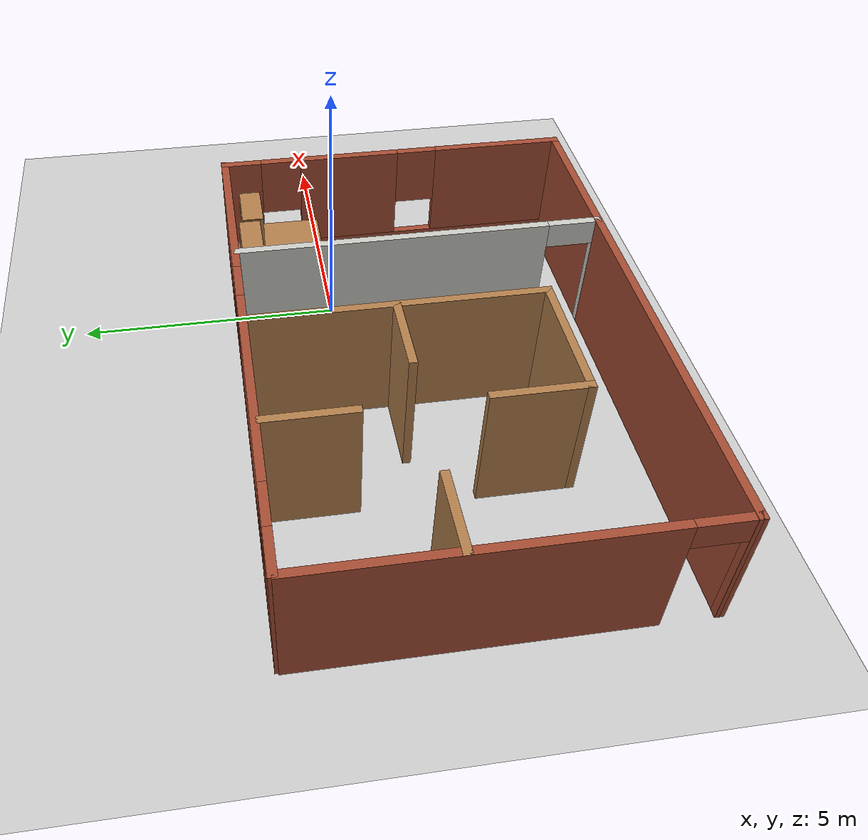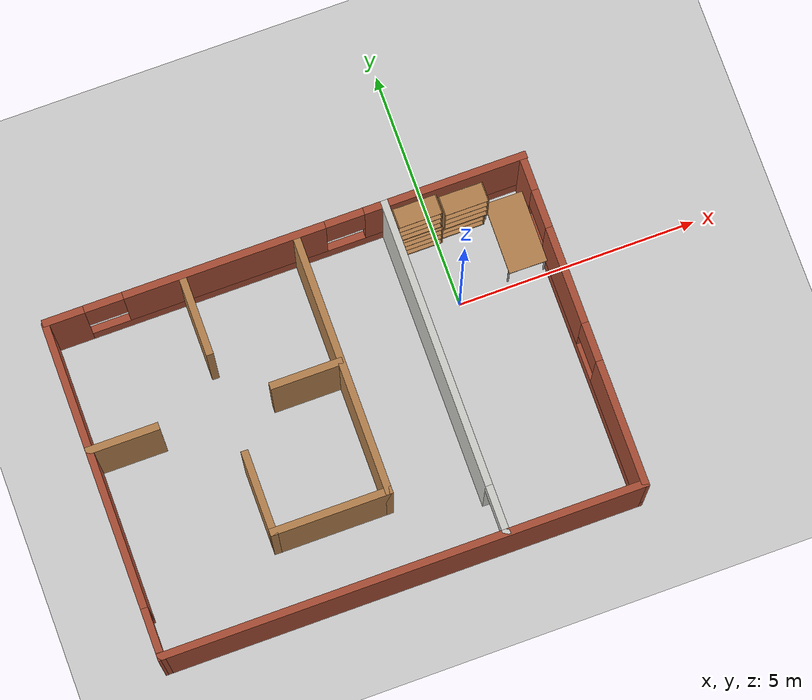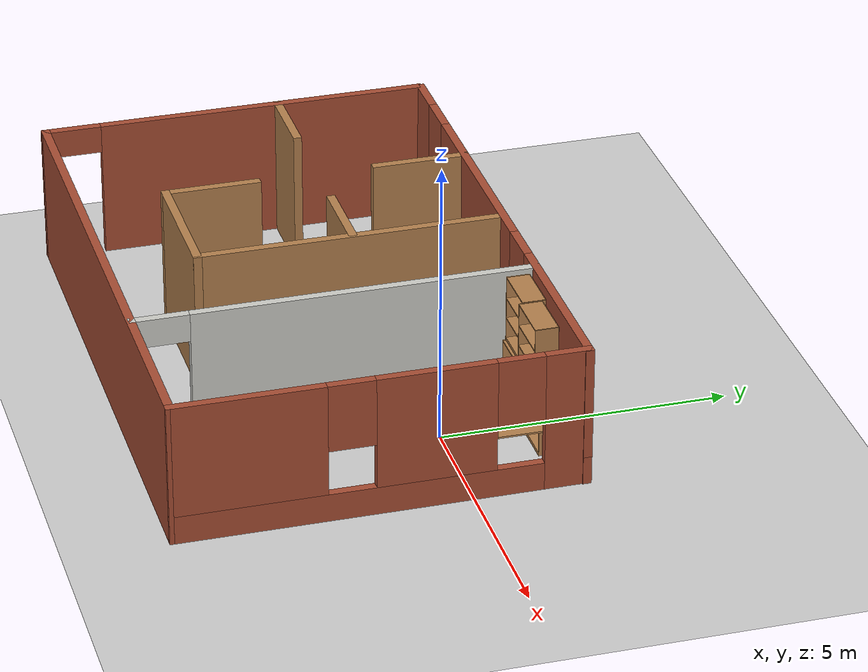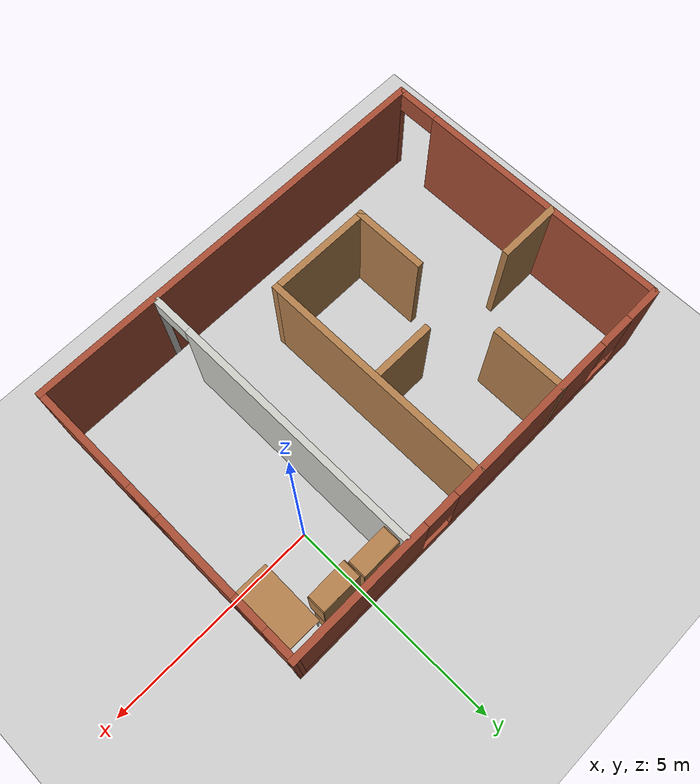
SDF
<sdf version="1.7">
 <world name="default">
  <light name="sun" type="directional">
   <pose>0 0 10 0 -0 0</pose>
   <diffuse>0.8 0.8 0.8 1</diffuse>
   <specular>0.2 0.2 0.2 1</specular>
   <attenuation>
    <range>1000</range>
    <constant>0.9</constant>
    <linear>0.01</linear>
    <quadratic>0.001</quadratic>
   </attenuation>
   <direction>-0.5 0.1 -0.9</direction>
   <spot><inner_angle>0</inner_angle><outer_angle>0</outer_angle><falloff>0</falloff></spot>
  </light>
  <model name="ground_plane">
   <static>1</static>
   <link name="link">
    <collision name="collision">
     <geometry><plane><normal>0 0 1</normal><size>100 100</size></plane></geometry>
     <surface><friction><ode><mu>100</mu><mu2>50</mu2></ode></friction></surface>
    </collision>
    <visual name="visual">
     <cast_shadows>0</cast_shadows>
     <geometry><plane><normal>0 0 1</normal><size>100 100</size></plane></geometry>
     <material>
      <script><uri>file://media/materials/scripts/gazebo.material</uri><name>Gazebo/Grey</name></script>
     </material>
    </visual>
   </link>
  </model>
  <gravity>0 0 -9.8</gravity>
  <magnetic_field>6e-06 2.3e-05 -4.2e-05</magnetic_field>
  <atmosphere type="adiabatic"/>
  <physics type="ode">
   <max_step_size>0.001</max_step_size>
   <real_time_factor>1</real_time_factor>
   <real_time_update_rate>1000</real_time_update_rate>
  </physics>
  <scene><ambient>0.4 0.4 0.4 1</ambient><background>0.7 0.7 0.7 1</background><shadows>1</shadows></scene>
  <audio><device>default</device></audio>
  <spherical_coordinates>
   <surface_model>EARTH_WGS84</surface_model>
   <latitude_deg>0</latitude_deg>
   <longitude_deg>0</longitude_deg>
   <elevation>0</elevation>
   <heading_deg>0</heading_deg>
  </spherical_coordinates>
  <model name="resta_model1">
   <pose>-2.98569 -0.691081 0 0 -0 0</pose>
   <link name="Wall_0">
    <pose>0.014858 2.59796 0 0 -0 0</pose>
    <visual name="Wall_0_Visual_0">
     <pose>-4.57664 0 1.25 0 -0 0</pose>
     <geometry><box><size>0.846716 0.15 2.5</size></box></geometry>
     <material>
      <script><uri>file://media/materials/scripts/gazebo.material</uri><name>Gazebo/Bricks</name></script>
      <ambient>1 1 1 1</ambient>
     </material>
     <meta><layer>0</layer></meta>
    </visual>
    <collision name="Wall_0_Collision_0">
     <geometry><box><size>0.846716 0.15 2.5</size></box></geometry>
     <pose>-4.57664 0 1.25 0 -0 0</pose>
    </collision>
    <visual name="Wall_0_Visual_1">
     <pose>0.423358 0 0.25 0 -0 0</pose>
     <geometry><box><size>9.15328 0.15 0.5</size></box></geometry>
     <material>
      <script><uri>file://media/materials/scripts/gazebo.material</uri><name>Gazebo/Bricks</name></script>
      <ambient>1 1 1 1</ambient>
     </material>
     <meta><layer>0</layer></meta>
    </visual>
    <collision name="Wall_0_Collision_1">
     <geometry><box><size>9.15328 0.15 0.5</size></box></geometry>
     <pose>0.423358 0 0.25 0 -0 0</pose>
    </collision>
    <visual name="Wall_0_Visual_2">
     <pose>-1.2691 0 1.5 0 -0 0</pose>
     <geometry><box><size>4.16838 0.15 2</size></box></geometry>
     <material>
      <script><uri>file://media/materials/scripts/gazebo.material</uri><name>Gazebo/Bricks</name></script>
      <ambient>1 1 1 1</ambient>
     </material>
     <meta><layer>0</layer></meta>
    </visual>
    <collision name="Wall_0_Collision_2">
     <geometry><box><size>4.16838 0.15 2</size></box></geometry>
     <pose>-1.2691 0 1.5 0 -0 0</pose>
    </collision>
    <visual name="Wall_0_Visual_3">
     <pose>3.30755 0 1.5 0 -0 0</pose>
     <geometry><box><size>3.38491 0.15 2</size></box></geometry>
     <material>
      <script><uri>file://media/materials/scripts/gazebo.material</uri><name>Gazebo/Bricks</name></script>
      <ambient>1 1 1 1</ambient>
     </material>
     <meta><layer>0</layer></meta>
    </visual>
    <collision name="Wall_0_Collision_3">
     <geometry><box><size>3.38491 0.15 2</size></box></geometry>
     <pose>3.30755 0 1.5 0 -0 0</pose>
    </collision>
    <visual name="Wall_0_Visual_4">
     <pose>-3.75328 0 1.9 0 -0 0</pose>
     <geometry><box><size>0.8 0.15 1.2</size></box></geometry>
     <material>
      <script><uri>file://media/materials/scripts/gazebo.material</uri><name>Gazebo/Bricks</name></script>
      <ambient>1 1 1 1</ambient>
     </material>
     <meta><layer>0</layer></meta>
    </visual>
    <collision name="Wall_0_Collision_4">
     <geometry><box><size>0.8 0.15 1.2</size></box></geometry>
     <pose>-3.75328 0 1.9 0 -0 0</pose>
    </collision>
    <visual name="Wall_0_Visual_5">
     <pose>1.21509 0 1.9 0 -0 0</pose>
     <geometry><box><size>0.8 0.15 1.2</size></box></geometry>
     <material>
      <script><uri>file://media/materials/scripts/gazebo.material</uri><name>Gazebo/Bricks</name></script>
      <ambient>1 1 1 1</ambient>
     </material>
     <meta><layer>0</layer></meta>
    </visual>
    <collision name="Wall_0_Collision_5">
     <geometry><box><size>0.8 0.15 1.2</size></box></geometry>
     <pose>1.21509 0 1.9 0 -0 0</pose>
    </collision>
   </link>
   <link name="Wall_15">
    <pose>2.07217 -0.827043 0 0 -0 -1.5708</pose>
    <visual name="Wall_15_Visual_0">
     <pose>-0.50831 0 1.25 0 -0 0</pose>
     <geometry><box><size>5.98338 0.15 2.5</size></box></geometry>
     <material>
      <script><uri>file://media/materials/scripts/gazebo.material</uri><name>Gazebo/CeilingTiled</name></script>
      <ambient>1 1 1 1</ambient>
     </material>
     <meta><layer>0</layer></meta>
    </visual>
    <collision name="Wall_15_Collision_0">
     <geometry><box><size>5.98338 0.15 2.5</size></box></geometry>
     <pose>-0.50831 0 1.25 0 -0 0</pose>
    </collision>
    <visual name="Wall_15_Visual_1">
     <pose>3.44169 0 1.25 0 -0 0</pose>
     <geometry><box><size>0.116619 0.15 2.5</size></box></geometry>
     <material>
      <script><uri>file://media/materials/scripts/gazebo.material</uri><name>Gazebo/CeilingTiled</name></script>
      <ambient>1 1 1 1</ambient>
     </material>
     <meta><layer>0</layer></meta>
    </visual>
    <collision name="Wall_15_Collision_1">
     <geometry><box><size>0.116619 0.15 2.5</size></box></geometry>
     <pose>3.44169 0 1.25 0 -0 0</pose>
    </collision>
    <visual name="Wall_15_Visual_2">
     <pose>2.93338 0 2.25 0 -0 0</pose>
     <geometry><box><size>0.9 0.15 0.5</size></box></geometry>
     <material>
      <script><uri>file://media/materials/scripts/gazebo.material</uri><name>Gazebo/CeilingTiled</name></script>
      <ambient>1 1 1 1</ambient>
     </material>
     <meta><layer>0</layer></meta>
    </visual>
    <collision name="Wall_15_Collision_2">
     <geometry><box><size>0.9 0.15 0.5</size></box></geometry>
     <pose>2.93338 0 2.25 0 -0 0</pose>
    </collision>
   </link>
   <link name="Wall_18">
    <collision name="Wall_18_Collision">
     <geometry><box><size>5.5 0.15 2.5</size></box></geometry>
     <pose>0 0 1.25 0 -0 0</pose>
    </collision>
    <visual name="Wall_18_Visual">
     <pose>0 0 1.25 0 -0 0</pose>
     <geometry><box><size>5.5 0.15 2.5</size></box></geometry>
     <material>
      <script><uri>file://media/materials/scripts/gazebo.material</uri><name>Gazebo/Wood</name></script>
      <ambient>1 1 1 1</ambient>
     </material>
     <meta><layer>0</layer></meta>
    </visual>
    <pose>0.222168 -0.077043 0 0 -0 -1.5708</pose>
   </link>
   <link name="Wall_2">
    <pose>4.91618 -0.844732 0 0 -0 -1.57254</pose>
    <visual name="Wall_2_Visual_0">
     <pose>-3.1172 0 1.25 0 -0 0</pose>
     <geometry><box><size>0.801048 0.15 2.5</size></box></geometry>
     <material>
      <script><uri>file://media/materials/scripts/gazebo.material</uri><name>Gazebo/Bricks</name></script>
      <ambient>1 1 1 1</ambient>
     </material>
     <meta><layer>0</layer></meta>
    </visual>
    <collision name="Wall_2_Collision_0">
     <geometry><box><size>0.801048 0.15 2.5</size></box></geometry>
     <pose>-3.1172 0 1.25 0 -0 0</pose>
    </collision>
    <visual name="Wall_2_Visual_1">
     <pose>0.400524 0 0.25 0 -0 0</pose>
     <geometry><box><size>6.2344 0.15 0.5</size></box></geometry>
     <material>
      <script><uri>file://media/materials/scripts/gazebo.material</uri><name>Gazebo/Bricks</name></script>
      <ambient>1 1 1 1</ambient>
     </material>
     <meta><layer>0</layer></meta>
    </visual>
    <collision name="Wall_2_Collision_1">
     <geometry><box><size>6.2344 0.15 0.5</size></box></geometry>
     <pose>0.400524 0 0.25 0 -0 0</pose>
    </collision>
    <visual name="Wall_2_Visual_2">
     <pose>-0.909682 0 1.5 0 -0 0</pose>
     <geometry><box><size>2.01398 0.15 2</size></box></geometry>
     <material>
      <script><uri>file://media/materials/scripts/gazebo.material</uri><name>Gazebo/Bricks</name></script>
      <ambient>1 1 1 1</ambient>
     </material>
     <meta><layer>0</layer></meta>
    </visual>
    <collision name="Wall_2_Collision_2">
     <geometry><box><size>2.01398 0.15 2</size></box></geometry>
     <pose>-0.909682 0 1.5 0 -0 0</pose>
    </collision>
    <visual name="Wall_2_Visual_3">
     <pose>2.20751 0 1.5 0 -0 0</pose>
     <geometry><box><size>2.62041 0.15 2</size></box></geometry>
     <material>
      <script><uri>file://media/materials/scripts/gazebo.material</uri><name>Gazebo/Bricks</name></script>
      <ambient>1 1 1 1</ambient>
     </material>
     <meta><layer>0</layer></meta>
    </visual>
    <collision name="Wall_2_Collision_3">
     <geometry><box><size>2.62041 0.15 2</size></box></geometry>
     <pose>2.20751 0 1.5 0 -0 0</pose>
    </collision>
    <visual name="Wall_2_Visual_4">
     <pose>-2.31667 0 1.9 0 -0 0</pose>
     <geometry><box><size>0.8 0.15 1.2</size></box></geometry>
     <material>
      <script><uri>file://media/materials/scripts/gazebo.material</uri><name>Gazebo/Bricks</name></script>
      <ambient>1 1 1 1</ambient>
     </material>
     <meta><layer>0</layer></meta>
    </visual>
    <collision name="Wall_2_Collision_4">
     <geometry><box><size>0.8 0.15 1.2</size></box></geometry>
     <pose>-2.31667 0 1.9 0 -0 0</pose>
    </collision>
    <visual name="Wall_2_Visual_5">
     <pose>0.497309 0 1.9 0 -0 0</pose>
     <geometry><box><size>0.8 0.15 1.2</size></box></geometry>
     <material>
      <script><uri>file://media/materials/scripts/gazebo.material</uri><name>Gazebo/Bricks</name></script>
      <ambient>1 1 1 1</ambient>
     </material>
     <meta><layer>0</layer></meta>
    </visual>
    <collision name="Wall_2_Collision_5">
     <geometry><box><size>0.8 0.15 1.2</size></box></geometry>
     <pose>0.497309 0 1.9 0 -0 0</pose>
    </collision>
   </link>
   <link name="Wall_27">
    <collision name="Wall_27_Collision">
     <geometry><box><size>1.5 0.15 2.5</size></box></geometry>
     <pose>0 0 1.25 0 -0 0</pose>
    </collision>
    <visual name="Wall_27_Visual">
     <pose>0 0 1.25 0 -0 0</pose>
     <geometry><box><size>1.5 0.15 2.5</size></box></geometry>
     <material>
      <script><uri>file://media/materials/scripts/gazebo.material</uri><name>Gazebo/Wood</name></script>
      <ambient>1 1 1 1</ambient>
     </material>
     <meta><layer>0</layer></meta>
    </visual>
    <pose>-0.499776 -0.055169 0 0 -0 0</pose>
   </link>
   <link name="Wall_3">
    <collision name="Wall_3_Collision">
     <geometry><box><size>10 0.15 2.5</size></box></geometry>
     <pose>0 0 1.25 0 -0 0</pose>
    </collision>
    <visual name="Wall_3_Visual">
     <pose>0 0 1.25 0 -0 0</pose>
     <geometry><box><size>10 0.15 2.5</size></box></geometry>
     <material>
      <script><uri>file://media/materials/scripts/gazebo.material</uri><name>Gazebo/Bricks</name></script>
      <ambient>1 1 1 1</ambient>
     </material>
     <meta><layer>0</layer></meta>
    </visual>
    <pose>-0.014816 -4.28742 0 0 -0 3.14159</pose>
   </link>
   <link name="Wall_31">
    <collision name="Wall_31_Collision">
     <geometry><box><size>2.5 0.15 2.5</size></box></geometry>
     <pose>0 0 1.25 0 -0 0</pose>
    </collision>
    <visual name="Wall_31_Visual">
     <pose>0 0 1.25 0 -0 0</pose>
     <geometry><box><size>2.5 0.15 2.5</size></box></geometry>
     <material>
      <script><uri>file://media/materials/scripts/gazebo.material</uri><name>Gazebo/Wood</name></script>
      <ambient>1 1 1 1</ambient>
     </material>
     <meta><layer>0</layer></meta>
    </visual>
    <pose>-0.952832 -2.75204 0 0 -0 3.14159</pose>
   </link>
   <link name="Wall_34">
    <collision name="Wall_34_Collision">
     <geometry><box><size>1.75 0.15 2.5</size></box></geometry>
     <pose>0 0 1.25 0 -0 0</pose>
    </collision>
    <visual name="Wall_34_Visual">
     <pose>0 0 1.25 0 -0 0</pose>
     <geometry><box><size>1.75 0.15 2.5</size></box></geometry>
     <material>
      <script><uri>file://media/materials/scripts/gazebo.material</uri><name>Gazebo/Wood</name></script>
      <ambient>1 1 1 1</ambient>
     </material>
     <meta><layer>0</layer></meta>
    </visual>
    <pose>-2.12783 -1.95204 0 0 -0 1.5708</pose>
   </link>
   <link name="Wall_37">
    <collision name="Wall_37_Collision">
     <geometry><box><size>1.75 0.15 2.5</size></box></geometry>
     <pose>0 0 1.25 0 -0 0</pose>
    </collision>
    <visual name="Wall_37_Visual">
     <pose>0 0 1.25 0 -0 0</pose>
     <geometry><box><size>1.75 0.15 2.5</size></box></geometry>
     <material>
      <script><uri>file://media/materials/scripts/gazebo.material</uri><name>Gazebo/Wood</name></script>
      <ambient>1 1 1 1</ambient>
     </material>
     <meta><layer>0</layer></meta>
    </visual>
    <pose>-2.12783 1.79796 0 0 -0 -1.5708</pose>
   </link>
   <link name="Wall_4">
    <pose>-4.93792 -0.874018 0 0 -0 1.57024</pose>
    <visual name="Wall_4_Visual_0">
     <pose>-3.41053 0 1.25 0 -0 0</pose>
     <geometry><box><size>0.155742 0.15 2.5</size></box></geometry>
     <material>
      <script><uri>file://media/materials/scripts/gazebo.material</uri><name>Gazebo/Bricks</name></script>
      <ambient>1 1 1 1</ambient>
     </material>
     <meta><layer>0</layer></meta>
    </visual>
    <collision name="Wall_4_Collision_0">
     <geometry><box><size>0.155742 0.15 2.5</size></box></geometry>
     <pose>-3.41053 0 1.25 0 -0 0</pose>
    </collision>
    <visual name="Wall_4_Visual_1">
     <pose>0.527871 0 1.25 0 -0 0</pose>
     <geometry><box><size>5.92107 0.15 2.5</size></box></geometry>
     <material>
      <script><uri>file://media/materials/scripts/gazebo.material</uri><name>Gazebo/Bricks</name></script>
      <ambient>1 1 1 1</ambient>
     </material>
     <meta><layer>0</layer></meta>
    </visual>
    <collision name="Wall_4_Collision_1">
     <geometry><box><size>5.92107 0.15 2.5</size></box></geometry>
     <pose>0.527871 0 1.25 0 -0 0</pose>
    </collision>
    <visual name="Wall_4_Visual_2">
     <pose>-2.88266 0 2.25 0 -0 0</pose>
     <geometry><box><size>0.9 0.15 0.5</size></box></geometry>
     <material>
      <script><uri>file://media/materials/scripts/gazebo.material</uri><name>Gazebo/Bricks</name></script>
      <ambient>1 1 1 1</ambient>
     </material>
     <meta><layer>0</layer></meta>
    </visual>
    <collision name="Wall_4_Collision_2">
     <geometry><box><size>0.9 0.15 0.5</size></box></geometry>
     <pose>-2.88266 0 2.25 0 -0 0</pose>
    </collision>
   </link>
   <link name="Wall_40">
    <collision name="Wall_40_Collision">
     <geometry><box><size>1.5 0.15 2.5</size></box></geometry>
     <pose>0 0 1.25 0 -0 0</pose>
    </collision>
    <visual name="Wall_40_Visual">
     <pose>0 0 1.25 0 -0 0</pose>
     <geometry><box><size>1.5 0.15 2.5</size></box></geometry>
     <material>
      <script><uri>file://media/materials/scripts/gazebo.material</uri><name>Gazebo/Wood</name></script>
      <ambient>1 1 1 1</ambient>
     </material>
     <meta><layer>0</layer></meta>
    </visual>
    <pose>-4.26103 -0.060615 0 0 -0 0</pose>
   </link>
   <static>1</static>
  </model>
  <model name="table">
   <static>1</static>
   <link name="link">
    <collision name="surface">
     <pose>0 0 1 0 -0 0</pose>
     <geometry><box><size>1.5 0.8 0.03</size></box></geometry>
     <surface><friction><ode><mu>0.6</mu><mu2>0.6</mu2></ode></friction></surface>
    </collision>
    <visual name="visual1">
     <pose>0 0 1 0 -0 0</pose>
     <geometry><box><size>1.5 0.8 0.03</size></box></geometry>
     <material>
      <script><uri>file://media/materials/scripts/gazebo.material</uri><name>Gazebo/Wood</name></script>
     </material>
    </visual>
    <collision name="front_left_leg">
     <pose>0.68 0.38 0.5 0 -0 0</pose>
     <geometry><cylinder><radius>0.02</radius><length>1</length></cylinder></geometry>
    </collision>
    <visual name="front_left_leg">
     <pose>0.68 0.38 0.5 0 -0 0</pose>
     <geometry><cylinder><radius>0.02</radius><length>1</length></cylinder></geometry>
     <material>
      <script><uri>file://media/materials/scripts/gazebo.material</uri><name>Gazebo/Grey</name></script>
     </material>
    </visual>
    <collision name="front_right_leg">
     <pose>0.68 -0.38 0.5 0 -0 0</pose>
     <geometry><cylinder><radius>0.02</radius><length>1</length></cylinder></geometry>
    </collision>
    <visual name="front_right_leg">
     <pose>0.68 -0.38 0.5 0 -0 0</pose>
     <geometry><cylinder><radius>0.02</radius><length>1</length></cylinder></geometry>
     <material>
      <script><uri>file://media/materials/scripts/gazebo.material</uri><name>Gazebo/Grey</name></script>
     </material>
    </visual>
    <collision name="back_right_leg">
     <pose>-0.68 -0.38 0.5 0 -0 0</pose>
     <geometry><cylinder><radius>0.02</radius><length>1</length></cylinder></geometry>
    </collision>
    <visual name="back_right_leg">
     <pose>-0.68 -0.38 0.5 0 -0 0</pose>
     <geometry><cylinder><radius>0.02</radius><length>1</length></cylinder></geometry>
     <material>
      <script><uri>file://media/materials/scripts/gazebo.material</uri><name>Gazebo/Grey</name></script>
     </material>
    </visual>
    <collision name="back_left_leg">
     <pose>-0.68 0.38 0.5 0 -0 0</pose>
     <geometry><cylinder><radius>0.02</radius><length>1</length></cylinder></geometry>
    </collision>
    <visual name="back_left_leg">
     <pose>-0.68 0.38 0.5 0 -0 0</pose>
     <geometry><cylinder><radius>0.02</radius><length>1</length></cylinder></geometry>
     <material>
      <script><uri>file://media/materials/scripts/gazebo.material</uri><name>Gazebo/Grey</name></script>
     </material>
    </visual>
   </link>
   <pose>1.45198 0.811248 -0 0 -0 1.56118</pose>
  </model>
  <model name="bookshelf">
   <static>1</static>
   <link name="link">
    <inertial><mass>1</mass></inertial>
    <collision name="back">
     <pose>0 0.005 0.6 0 -0 0</pose>
     <geometry><box><size>0.9 0.01 1.2</size></box></geometry>
    </collision>
    <visual name="visual1">
     <pose>0 0.005 0.6 0 -0 0</pose>
     <geometry><box><size>0.9 0.01 1.2</size></box></geometry>
     <material>
      <script><uri>file://media/materials/scripts/gazebo.material</uri><name>Gazebo/Wood</name></script>
     </material>
    </visual>
    <collision name="left_side">
     <pose>0.45 -0.195 0.6 0 -0 0</pose>
     <geometry><box><size>0.02 0.4 1.2</size></box></geometry>
    </collision>
    <visual name="visual2">
     <pose>0.45 -0.195 0.6 0 -0 0</pose>
     <geometry><box><size>0.02 0.4 1.2</size></box></geometry>
     <material>
      <script><uri>file://media/materials/scripts/gazebo.material</uri><name>Gazebo/Wood</name></script>
     </material>
    </visual>
    <collision name="right_side">
     <pose>-0.45 -0.195 0.6 0 -0 0</pose>
     <geometry><box><size>0.02 0.4 1.2</size></box></geometry>
    </collision>
    <visual name="visual3">
     <pose>-0.45 -0.195 0.6 0 -0 0</pose>
     <geometry><box><size>0.02 0.4 1.2</size></box></geometry>
     <material>
      <script><uri>file://media/materials/scripts/gazebo.material</uri><name>Gazebo/Wood</name></script>
     </material>
    </visual>
    <collision name="bottom">
     <pose>0 -0.195 0.03 0 -0 0</pose>
     <geometry><box><size>0.88 0.4 0.06</size></box></geometry>
    </collision>
    <visual name="visual4">
     <pose>0 -0.195 0.03 0 -0 0</pose>
     <geometry><box><size>0.88 0.4 0.06</size></box></geometry>
     <material>
      <script><uri>file://media/materials/scripts/gazebo.material</uri><name>Gazebo/Wood</name></script>
     </material>
    </visual>
    <collision name="top">
     <pose>0 -0.195 1.19 0 -0 0</pose>
     <geometry><box><size>0.88 0.4 0.02</size></box></geometry>
    </collision>
    <visual name="visual5">
     <pose>0 -0.195 1.19 0 -0 0</pose>
     <geometry><box><size>0.88 0.4 0.02</size></box></geometry>
     <material>
      <script><uri>file://media/materials/scripts/gazebo.material</uri><name>Gazebo/Wood</name></script>
     </material>
    </visual>
    <collision name="low_shelf">
     <pose>0 -0.195 0.43 0 -0 0</pose>
     <geometry><box><size>0.88 0.4 0.02</size></box></geometry>
    </collision>
    <visual name="visual6">
     <pose>0 -0.195 0.43 0 -0 0</pose>
     <geometry><box><size>0.88 0.4 0.02</size></box></geometry>
     <material>
      <script><uri>file://media/materials/scripts/gazebo.material</uri><name>Gazebo/Wood</name></script>
     </material>
    </visual>
    <collision name="high_shelf">
     <pose>0 -0.195 0.8 0 -0 0</pose>
     <geometry><box><size>0.88 0.4 0.02</size></box></geometry>
    </collision>
    <visual name="visual7">
     <pose>0 -0.195 0.8 0 -0 0</pose>
     <geometry><box><size>0.88 0.4 0.02</size></box></geometry>
     <material>
      <script><uri>file://media/materials/scripts/gazebo.material</uri><name>Gazebo/Wood</name></script>
     </material>
    </visual>
   </link>
   <pose>-0.362138 1.71279 0.013804 0 -0 0</pose>
  </model>
  <model name="bookshelf_clone">
   <static>1</static>
   <link name="link">
    <inertial><mass>1</mass></inertial>
    <collision name="back">
     <pose>0 0.005 0.6 0 -0 0</pose>
     <geometry><box><size>0.9 0.01 1.2</size></box></geometry>
    </collision>
    <visual name="visual1">
     <pose>0 0.005 0.6 0 -0 0</pose>
     <geometry><box><size>0.9 0.01 1.2</size></box></geometry>
     <material>
      <script><uri>file://media/materials/scripts/gazebo.material</uri><name>Gazebo/Wood</name></script>
     </material>
    </visual>
    <collision name="left_side">
     <pose>0.45 -0.195 0.6 0 -0 0</pose>
     <geometry><box><size>0.02 0.4 1.2</size></box></geometry>
    </collision>
    <visual name="visual2">
     <pose>0.45 -0.195 0.6 0 -0 0</pose>
     <geometry><box><size>0.02 0.4 1.2</size></box></geometry>
     <material>
      <script><uri>file://media/materials/scripts/gazebo.material</uri><name>Gazebo/Wood</name></script>
     </material>
    </visual>
    <collision name="right_side">
     <pose>-0.45 -0.195 0.6 0 -0 0</pose>
     <geometry><box><size>0.02 0.4 1.2</size></box></geometry>
    </collision>
    <visual name="visual3">
     <pose>-0.45 -0.195 0.6 0 -0 0</pose>
     <geometry><box><size>0.02 0.4 1.2</size></box></geometry>
     <material>
      <script><uri>file://media/materials/scripts/gazebo.material</uri><name>Gazebo/Wood</name></script>
     </material>
    </visual>
    <collision name="bottom">
     <pose>0 -0.195 0.03 0 -0 0</pose>
     <geometry><box><size>0.88 0.4 0.06</size></box></geometry>
    </collision>
    <visual name="visual4">
     <pose>0 -0.195 0.03 0 -0 0</pose>
     <geometry><box><size>0.88 0.4 0.06</size></box></geometry>
     <material>
      <script><uri>file://media/materials/scripts/gazebo.material</uri><name>Gazebo/Wood</name></script>
     </material>
    </visual>
    <collision name="top">
     <pose>0 -0.195 1.19 0 -0 0</pose>
     <geometry><box><size>0.88 0.4 0.02</size></box></geometry>
    </collision>
    <visual name="visual5">
     <pose>0 -0.195 1.19 0 -0 0</pose>
     <geometry><box><size>0.88 0.4 0.02</size></box></geometry>
     <material>
      <script><uri>file://media/materials/scripts/gazebo.material</uri><name>Gazebo/Wood</name></script>
     </material>
    </visual>
    <collision name="low_shelf">
     <pose>0 -0.195 0.43 0 -0 0</pose>
     <geometry><box><size>0.88 0.4 0.02</size></box></geometry>
    </collision>
    <visual name="visual6">
     <pose>0 -0.195 0.43 0 -0 0</pose>
     <geometry><box><size>0.88 0.4 0.02</size></box></geometry>
     <material>
      <script><uri>file://media/materials/scripts/gazebo.material</uri><name>Gazebo/Wood</name></script>
     </material>
    </visual>
    <collision name="high_shelf">
     <pose>0 -0.195 0.8 0 -0 0</pose>
     <geometry><box><size>0.88 0.4 0.02</size></box></geometry>
    </collision>
    <visual name="visual7">
     <pose>0 -0.195 0.8 0 -0 0</pose>
     <geometry><box><size>0.88 0.4 0.02</size></box></geometry>
     <material>
      <script><uri>file://media/materials/scripts/gazebo.material</uri><name>Gazebo/Wood</name></script>
     </material>
    </visual>
   </link>
   <pose>-0.363612 1.76306 1.20889 0 -0 0</pose>
  </model>
  <model name="bookshelf_clone_0">
   <static>1</static>
   <link name="link">
    <inertial><mass>1</mass></inertial>
    <collision name="back">
     <pose>0 0.005 0.6 0 -0 0</pose>
     <geometry><box><size>0.9 0.01 1.2</size></box></geometry>
    </collision>
    <visual name="visual1">
     <pose>0 0.005 0.6 0 -0 0</pose>
     <geometry><box><size>0.9 0.01 1.2</size></box></geometry>
     <material>
      <script><uri>file://media/materials/scripts/gazebo.material</uri><name>Gazebo/Wood</name></script>
     </material>
    </visual>
    <collision name="left_side">
     <pose>0.45 -0.195 0.6 0 -0 0</pose>
     <geometry><box><size>0.02 0.4 1.2</size></box></geometry>
    </collision>
    <visual name="visual2">
     <pose>0.45 -0.195 0.6 0 -0 0</pose>
     <geometry><box><size>0.02 0.4 1.2</size></box></geometry>
     <material>
      <script><uri>file://media/materials/scripts/gazebo.material</uri><name>Gazebo/Wood</name></script>
     </material>
    </visual>
    <collision name="right_side">
     <pose>-0.45 -0.195 0.6 0 -0 0</pose>
     <geometry><box><size>0.02 0.4 1.2</size></box></geometry>
    </collision>
    <visual name="visual3">
     <pose>-0.45 -0.195 0.6 0 -0 0</pose>
     <geometry><box><size>0.02 0.4 1.2</size></box></geometry>
     <material>
      <script><uri>file://media/materials/scripts/gazebo.material</uri><name>Gazebo/Wood</name></script>
     </material>
    </visual>
    <collision name="bottom">
     <pose>0 -0.195 0.03 0 -0 0</pose>
     <geometry><box><size>0.88 0.4 0.06</size></box></geometry>
    </collision>
    <visual name="visual4">
     <pose>0 -0.195 0.03 0 -0 0</pose>
     <geometry><box><size>0.88 0.4 0.06</size></box></geometry>
     <material>
      <script><uri>file://media/materials/scripts/gazebo.material</uri><name>Gazebo/Wood</name></script>
     </material>
    </visual>
    <collision name="top">
     <pose>0 -0.195 1.19 0 -0 0</pose>
     <geometry><box><size>0.88 0.4 0.02</size></box></geometry>
    </collision>
    <visual name="visual5">
     <pose>0 -0.195 1.19 0 -0 0</pose>
     <geometry><box><size>0.88 0.4 0.02</size></box></geometry>
     <material>
      <script><uri>file://media/materials/scripts/gazebo.material</uri><name>Gazebo/Wood</name></script>
     </material>
    </visual>
    <collision name="low_shelf">
     <pose>0 -0.195 0.43 0 -0 0</pose>
     <geometry><box><size>0.88 0.4 0.02</size></box></geometry>
    </collision>
    <visual name="visual6">
     <pose>0 -0.195 0.43 0 -0 0</pose>
     <geometry><box><size>0.88 0.4 0.02</size></box></geometry>
     <material>
      <script><uri>file://media/materials/scripts/gazebo.material</uri><name>Gazebo/Wood</name></script>
     </material>
    </visual>
    <collision name="high_shelf">
     <pose>0 -0.195 0.8 0 -0 0</pose>
     <geometry><box><size>0.88 0.4 0.02</size></box></geometry>
    </collision>
    <visual name="visual7">
     <pose>0 -0.195 0.8 0 -0 0</pose>
     <geometry><box><size>0.88 0.4 0.02</size></box></geometry>
     <material>
      <script><uri>file://media/materials/scripts/gazebo.material</uri><name>Gazebo/Wood</name></script>
     </material>
    </visual>
   </link>
   <pose>0.561817 1.78779 0.013804 0 -0 0</pose>
  </model>
  <model name="bookshelf_clone_clone">
   <static>1</static>
   <link name="link">
    <inertial><mass>1</mass></inertial>
    <collision name="back">
     <pose>0 0.005 0.6 0 -0 0</pose>
     <geometry><box><size>0.9 0.01 1.2</size></box></geometry>
    </collision>
    <visual name="visual1">
     <pose>0 0.005 0.6 0 -0 0</pose>
     <geometry><box><size>0.9 0.01 1.2</size></box></geometry>
     <material>
      <script><uri>file://media/materials/scripts/gazebo.material</uri><name>Gazebo/Wood</name></script>
     </material>
    </visual>
    <collision name="left_side">
     <pose>0.45 -0.195 0.6 0 -0 0</pose>
     <geometry><box><size>0.02 0.4 1.2</size></box></geometry>
    </collision>
    <visual name="visual2">
     <pose>0.45 -0.195 0.6 0 -0 0</pose>
     <geometry><box><size>0.02 0.4 1.2</size></box></geometry>
     <material>
      <script><uri>file://media/materials/scripts/gazebo.material</uri><name>Gazebo/Wood</name></script>
     </material>
    </visual>
    <collision name="right_side">
     <pose>-0.45 -0.195 0.6 0 -0 0</pose>
     <geometry><box><size>0.02 0.4 1.2</size></box></geometry>
    </collision>
    <visual name="visual3">
     <pose>-0.45 -0.195 0.6 0 -0 0</pose>
     <geometry><box><size>0.02 0.4 1.2</size></box></geometry>
     <material>
      <script><uri>file://media/materials/scripts/gazebo.material</uri><name>Gazebo/Wood</name></script>
     </material>
    </visual>
    <collision name="bottom">
     <pose>0 -0.195 0.03 0 -0 0</pose>
     <geometry><box><size>0.88 0.4 0.06</size></box></geometry>
    </collision>
    <visual name="visual4">
     <pose>0 -0.195 0.03 0 -0 0</pose>
     <geometry><box><size>0.88 0.4 0.06</size></box></geometry>
     <material>
      <script><uri>file://media/materials/scripts/gazebo.material</uri><name>Gazebo/Wood</name></script>
     </material>
    </visual>
    <collision name="top">
     <pose>0 -0.195 1.19 0 -0 0</pose>
     <geometry><box><size>0.88 0.4 0.02</size></box></geometry>
    </collision>
    <visual name="visual5">
     <pose>0 -0.195 1.19 0 -0 0</pose>
     <geometry><box><size>0.88 0.4 0.02</size></box></geometry>
     <material>
      <script><uri>file://media/materials/scripts/gazebo.material</uri><name>Gazebo/Wood</name></script>
     </material>
    </visual>
    <collision name="low_shelf">
     <pose>0 -0.195 0.43 0 -0 0</pose>
     <geometry><box><size>0.88 0.4 0.02</size></box></geometry>
    </collision>
    <visual name="visual6">
     <pose>0 -0.195 0.43 0 -0 0</pose>
     <geometry><box><size>0.88 0.4 0.02</size></box></geometry>
     <material>
      <script><uri>file://media/materials/scripts/gazebo.material</uri><name>Gazebo/Wood</name></script>
     </material>
    </visual>
    <collision name="high_shelf">
     <pose>0 -0.195 0.8 0 -0 0</pose>
     <geometry><box><size>0.88 0.4 0.02</size></box></geometry>
    </collision>
    <visual name="visual7">
     <pose>0 -0.195 0.8 0 -0 0</pose>
     <geometry><box><size>0.88 0.4 0.02</size></box></geometry>
     <material>
      <script><uri>file://media/materials/scripts/gazebo.material</uri><name>Gazebo/Wood</name></script>
     </material>
    </visual>
   </link>
   <pose>0.570473 1.69006 1.21407 0 -0 0</pose>
  </model>
 </world>
</sdf>
